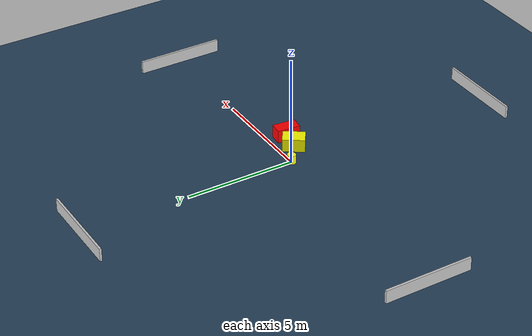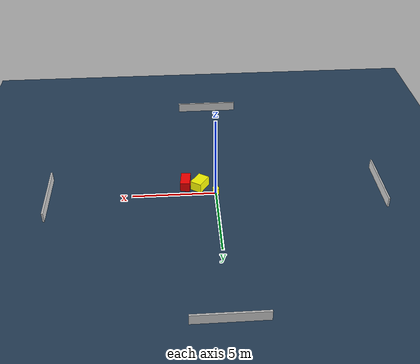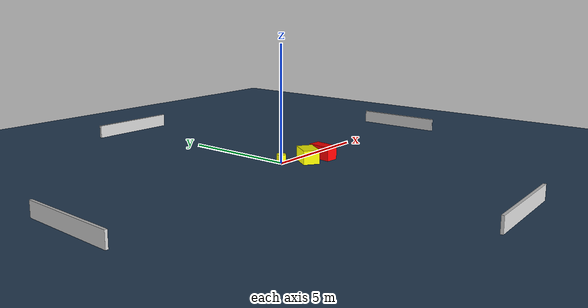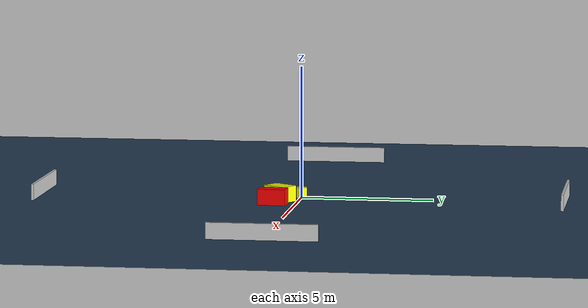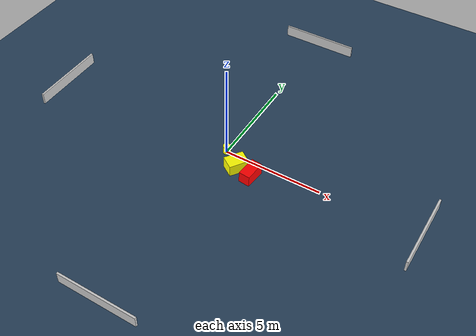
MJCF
<?xml version="1.0" ?>
<mujoco model="generated_environment">
  <option timestep="0.01" integrator="RK4" cone="elliptic"/>
  <default>
    <geom density="1"/>
  </default>
  <asset>
    <texture builtin="gradient" height="3072" name="skybox" rgb1="0.3 0.5 0.7" rgb2="0 0 0" type="skybox" width="512"/>
    <texture builtin="checker" height="300" name="groundplane" rgb1="0.2 0.3 0.4" rgb2="0.1 0.2 0.3" type="2d" width="300"/>
    <material name="groundplane" reflectance="0.2" texrepeat="5 5" texture="groundplane"/>
  </asset>
  <worldbody>
    <light dir="0 0 -1" directional="true" pos="0 0 1.5"/>
    <geom condim="3" friction="0.5 0.005 0.001" material="groundplane" name="floor" pos="0 0 0" size="0 0 0.05" type="plane"/>
    <body name="walls">
      <geom name="wall_1" condim="4" pos="-10.0 0.0 0.3" rgba="0.800000011920929 0.800000011920929 0.800000011920929 1.0" size="0.05 2.0 0.3" type="box"/>
      <geom name="wall_2" condim="4" pos="10.0 0.0 0.3" rgba="0.800000011920929 0.800000011920929 0.800000011920929 1.0" size="0.05 2.0 0.3" type="box"/>
      <geom name="wall_3" condim="4" pos="0.0 -10.0 0.3" rgba="0.800000011920929 0.800000011920929 0.800000011920929 1.0" size="2.0 0.05 0.3" type="box"/>
      <geom name="wall_4" condim="4" pos="0.0 10.0 0.3" rgba="0.800000011920929 0.800000011920929 0.800000011920929 1.0" size="2.0 0.05 0.3" type="box"/>
    </body>
    <body name="robot">
      <joint name="joint_x" type="slide" pos="0 0 0" axis="1 0 0"/>
      <joint name="joint_y" type="slide" pos="0 0 0" axis="0 1 0"/>
      <geom name="robot" type="cylinder" pos="0.0 0.0 0.2" size="0.2 0.2 0.0" mass="5.0" friction="1.0 0.005 0.0001" condim="4" rgba="1.0 1.0 0.0 1.0"/>
    </body>
    <body name="obstacle_1_movable">
      <geom name="obstacle_1_movable" condim="4" pos="0.9341082514868164 -0.6927092441464421 0.3" euler="0 0 145.71604206670114" friction="0.0 0.005 0.001" rgba="1.0 1.0 0.0 1.0" size="0.354032588498116 0.49656621165790366 0.3" type="box" mass="0.1"/>
      <joint type="free"/>
    </body>
    <body name="obstacle_2_static">
      <geom name="obstacle_2_static" condim="4" pos="1.8087115734695842 -0.8418662258467244 0.3" euler="0 0 84.58622411898148" friction="0.0 0.005 0.001" rgba="1.0 0.0 0.0 1.0" size="0.5271528417977311 0.2853554954247989 0.3" type="box"/>
    </body>
  </worldbody>
  <actuator>
    <motor name="actuator_x" joint="joint_x" gear="1" ctrlrange="-1 1"/>
    <motor name="actuator_y" joint="joint_y" gear="1" ctrlrange="-1 1"/>
  </actuator>
</mujoco>
